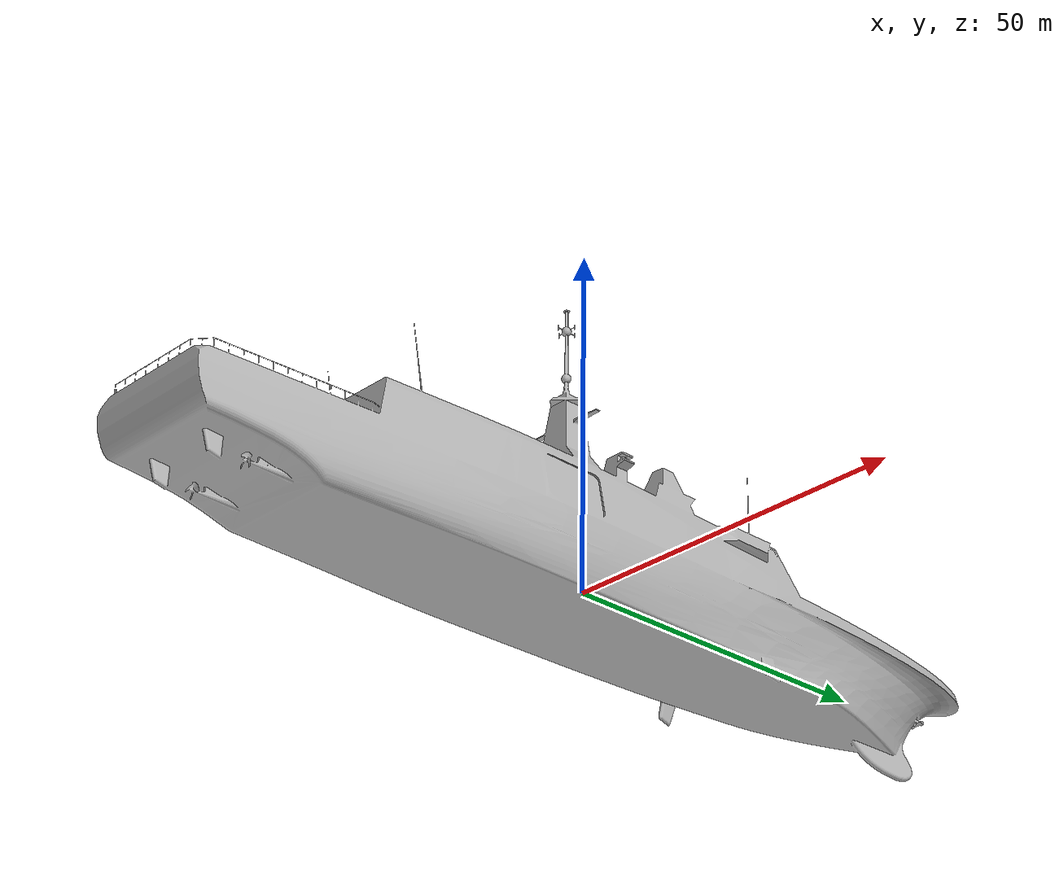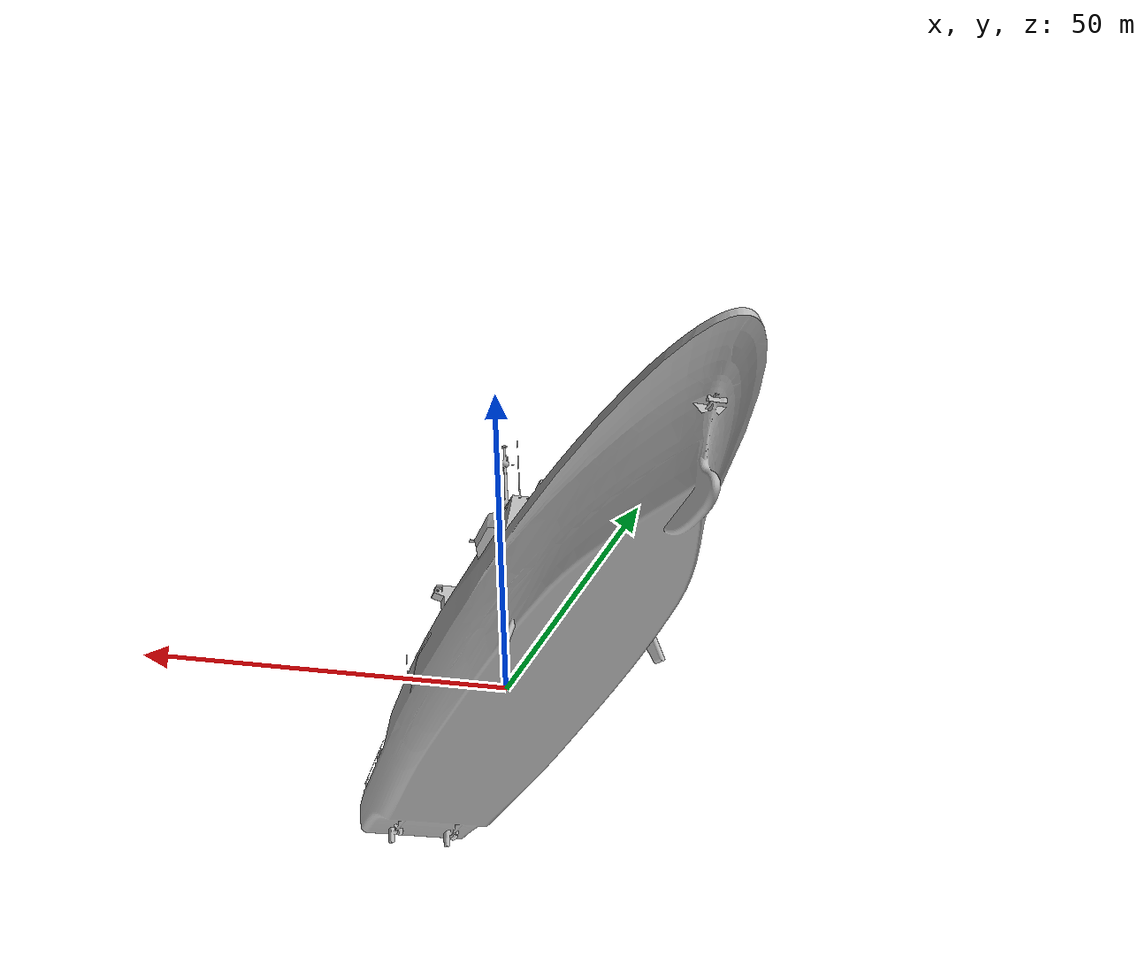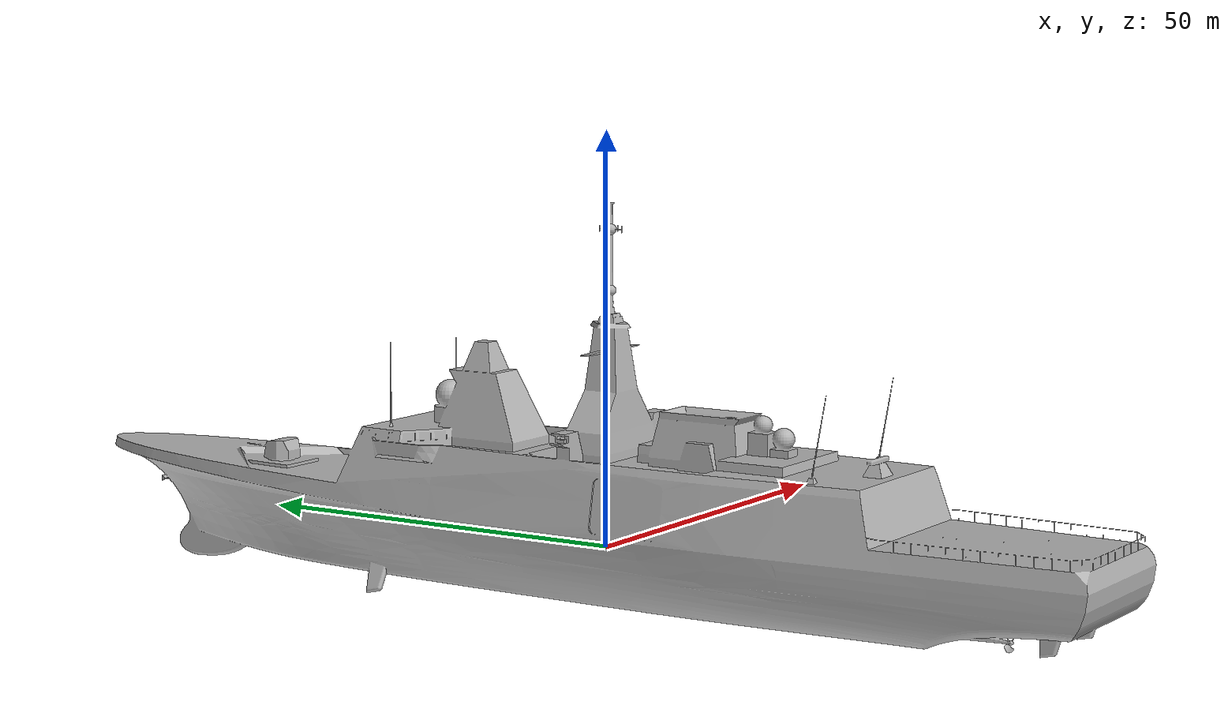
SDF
<?xml version="1.0"?>
<sdf version="1.10">
  <model name="Frigate">
    <plugin filename="gz-waves1-hydrodynamics-system" name="gz::sim::systems::Hydrodynamics">
    </plugin>
    <plugin
      filename="LoggingSystem"
      name="logging_system::LoggingSystem">
    </plugin>
    <pose>0 0 0 0 0 0</pose>
    <static>false</static>
    <link name="link">
      <visual name="visual">
        <geometry>
          <mesh>
            <uri>./meshes/fremm.dae</uri>
            <scale>1 1 1</scale>
          </mesh>
        </geometry>
      </visual>
      <collision name="collision">
        <pose>0 0 27 0 0 0</pose>
        <geometry>
          <box>
            <size>25.0 143.0 50.0</size>
          </box>
        </geometry>
      </collision>
      <inertial>
        <pose>0 0 0 0 0 0</pose>
        <mass>6300000</mass>
        <inertia>
          <ixx>328125000</ixx>
          <ixy>0</ixy>
          <iyy>10735725000</iyy>
          <iyz>0</iyz>
          <izz>11063850000</izz>
        </inertia>
      </inertial>
    </link>
  </model>
</sdf>
